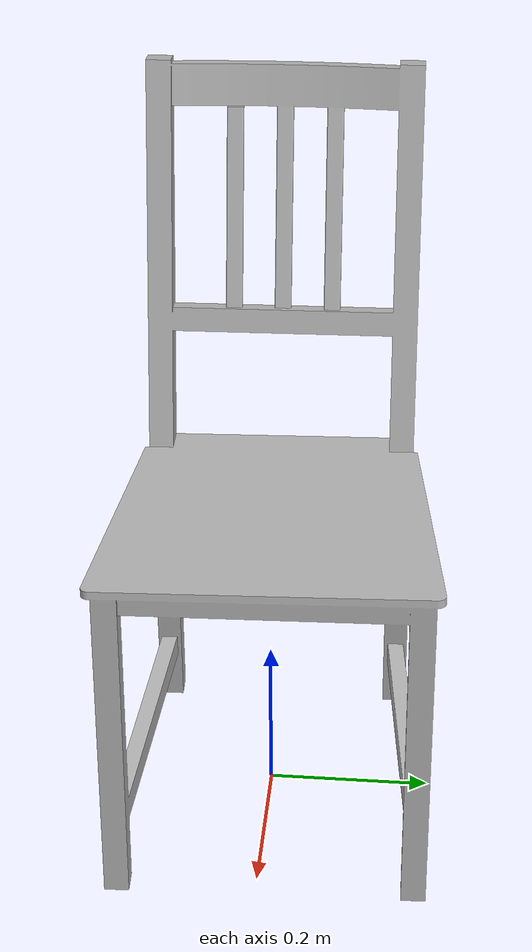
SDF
<?xml version="1.0" ?>
<sdf version="1.4">
 <model name="ikea_stefan_chair">
    <link name="link">
     <inertial>
       <mass>10</mass>
       <inertia>
         <ixx>0.0</ixx>
         <ixy>0.0</ixy>
         <ixz>0.0</ixz>
         <iyy>0.0</iyy>
         <iyz>0.0</iyz>
         <izz>0.1</izz>
       </inertia>
     </inertial>
     <collision name="collision">
       <pose>0 0 0 -3.14 0 1.6</pose>
       <geometry>
         <mesh>
           <uri>model://ikea_stefan_chair/meshes/mesh.dae</uri>
         </mesh>
       </geometry>
     </collision>
     <visual name="visual">
       <pose>0 0 0 -3.14 0 1.6</pose>
       <geometry>
         <mesh>
           <uri>model://ikea_stefan_chair/meshes/mesh.dae</uri>
         </mesh>
       </geometry>
     </visual>
    </link>
 </model>
</sdf>
